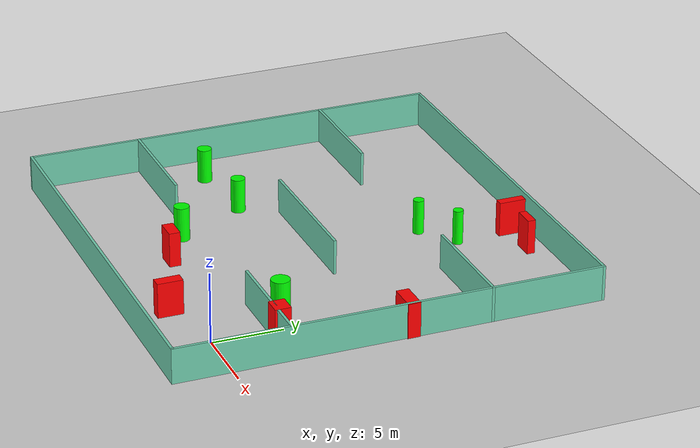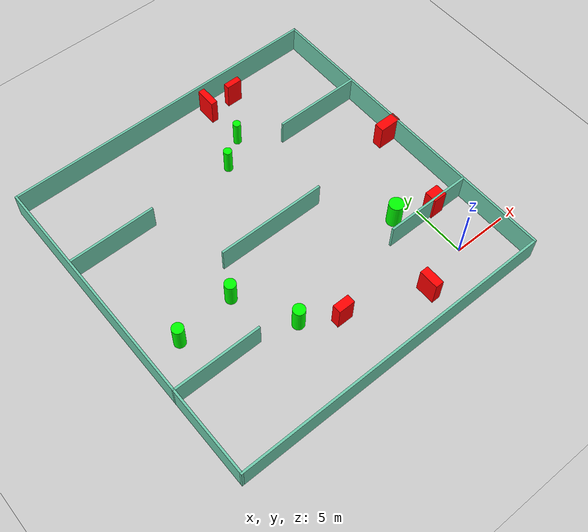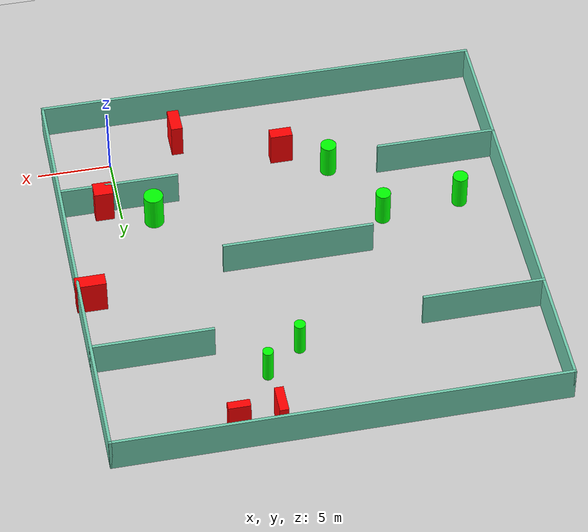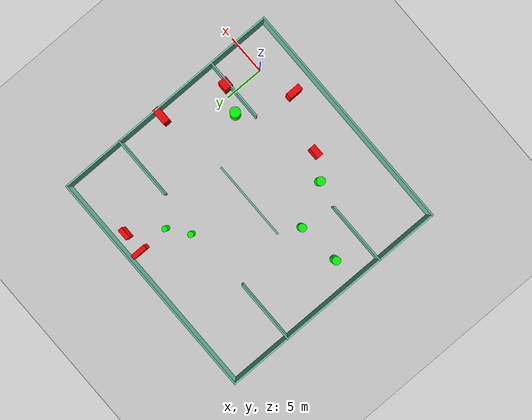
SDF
<sdf version="1.7">
 <world name="default">
  <light name="sun" type="directional">
   <pose>0 0 10 0 -0 0</pose>
   <diffuse>0.8 0.8 0.8 1</diffuse>
   <specular>0.2 0.2 0.2 1</specular>
   <attenuation>
    <range>1000</range>
    <constant>0.9</constant>
    <linear>0.01</linear>
    <quadratic>0.001</quadratic>
   </attenuation>
   <direction>-0.5 0.1 -0.9</direction>
   <spot><inner_angle>0</inner_angle><outer_angle>0</outer_angle><falloff>0</falloff></spot>
  </light>
  <model name="ground_plane">
   <static>1</static>
   <link name="link">
    <collision name="collision">
     <geometry><plane><normal>0 0 1</normal><size>100 100</size></plane></geometry>
     <surface>
      <contact><collide_bitmask>65535</collide_bitmask></contact>
      <friction><ode><mu>100</mu><mu2>50</mu2></ode></friction>
     </surface>
    </collision>
    <visual name="visual">
     <cast_shadows>0</cast_shadows>
     <geometry><plane><normal>0 0 1</normal><size>100 100</size></plane></geometry>
     <material>
      <script><uri>file://media/materials/scripts/gazebo.material</uri><name>Gazebo/Grey</name></script>
     </material>
    </visual>
   </link>
  </model>
  <gravity>0 0 -9.8</gravity>
  <magnetic_field>6e-06 2.3e-05 -4.2e-05</magnetic_field>
  <atmosphere type="adiabatic"/>
  <physics type="ode">
   <max_step_size>0.001</max_step_size>
   <real_time_factor>1</real_time_factor>
   <real_time_update_rate>1000</real_time_update_rate>
  </physics>
  <scene><ambient>0.4 0.4 0.4 1</ambient><background>0.7 0.7 0.7 1</background><shadows>1</shadows></scene>
  <spherical_coordinates>
   <surface_model>EARTH_WGS84</surface_model>
   <latitude_deg>0</latitude_deg>
   <longitude_deg>0</longitude_deg>
   <elevation>0</elevation>
   <heading_deg>0</heading_deg>
  </spherical_coordinates>
  <model name="my_base_walls">
   <link name="Wall_10">
    <collision name="Wall_10_Collision">
     <geometry><box><size>8.2 0.2 2.5</size></box></geometry>
     <pose>0 0 1.25 0 -0 0</pose>
    </collision>
    <visual name="Wall_10_Visual">
     <pose>0 0 1.25 0 -0 0</pose>
     <geometry><box><size>8.2 0.2 2.5</size></box></geometry>
     <material>
      <script><uri>file://media/materials/scripts/gazebo.material</uri><name>Gazebo/Grey</name></script>
      <ambient>0.435294 0.796078 0.67451 1</ambient>
     </material>
     <meta><layer>0</layer></meta>
    </visual>
    <pose>-11 -7 0 0 -0 0</pose>
   </link>
   <link name="Wall_12">
    <collision name="Wall_12_Collision">
     <geometry><box><size>8.2 0.2 2.5</size></box></geometry>
     <pose>0 0 1.25 0 -0 0</pose>
    </collision>
    <visual name="Wall_12_Visual">
     <pose>0 0 1.25 0 -0 0</pose>
     <geometry><box><size>8.2 0.2 2.5</size></box></geometry>
     <material>
      <script><uri>file://media/materials/scripts/gazebo.material</uri><name>Gazebo/Grey</name></script>
      <ambient>0.435294 0.796078 0.67451 1</ambient>
     </material>
     <meta><layer>0</layer></meta>
    </visual>
    <pose>-11 7 0 0 -0 0</pose>
   </link>
   <link name="Wall_14">
    <collision name="Wall_14_Collision">
     <geometry><box><size>8.2 0.2 2.5</size></box></geometry>
     <pose>0 0 1.25 0 -0 0</pose>
    </collision>
    <visual name="Wall_14_Visual">
     <pose>0 0 1.25 0 -0 0</pose>
     <geometry><box><size>8.2 0.2 2.5</size></box></geometry>
     <material>
      <script><uri>file://media/materials/scripts/gazebo.material</uri><name>Gazebo/Grey</name></script>
      <ambient>0.435294 0.796078 0.67451 1</ambient>
     </material>
     <meta><layer>0</layer></meta>
    </visual>
    <pose>11 7 0 0 -0 3.14159</pose>
   </link>
   <link name="Wall_16">
    <collision name="Wall_16_Collision">
     <geometry><box><size>10.2 0.2 2.5</size></box></geometry>
     <pose>0 0 1.25 0 -0 0</pose>
    </collision>
    <visual name="Wall_16_Visual">
     <pose>0 0 1.25 0 -0 0</pose>
     <geometry><box><size>10.2 0.2 2.5</size></box></geometry>
     <material>
      <script><uri>file://media/materials/scripts/gazebo.material</uri><name>Gazebo/Grey</name></script>
      <ambient>0.435294 0.796078 0.67451 1</ambient>
     </material>
     <meta><layer>0</layer></meta>
    </visual>
    <pose>0 0 0 0 -0 3.14159</pose>
   </link>
   <link name="Wall_2">
    <collision name="Wall_2_Collision">
     <geometry><box><size>30.2 0.2 2.5</size></box></geometry>
     <pose>0 0 1.25 0 -0 0</pose>
    </collision>
    <visual name="Wall_2_Visual">
     <pose>0 0 1.25 0 -0 0</pose>
     <geometry><box><size>30.2 0.2 2.5</size></box></geometry>
     <material>
      <script><uri>file://media/materials/scripts/gazebo.material</uri><name>Gazebo/Grey</name></script>
      <ambient>0.435294 0.796078 0.67451 1</ambient>
     </material>
     <meta><layer>0</layer></meta>
    </visual>
    <pose>0 -15 0 0 -0 3.14159</pose>
   </link>
   <link name="Wall_3">
    <collision name="Wall_3_Collision">
     <geometry><box><size>30.2 0.2 2.5</size></box></geometry>
     <pose>0 0 1.25 0 -0 0</pose>
    </collision>
    <visual name="Wall_3_Visual">
     <pose>0 0 1.25 0 -0 0</pose>
     <geometry><box><size>30.2 0.2 2.5</size></box></geometry>
     <material>
      <script><uri>file://media/materials/scripts/gazebo.material</uri><name>Gazebo/Grey</name></script>
      <ambient>0.435294 0.796078 0.67451 1</ambient>
     </material>
     <meta><layer>0</layer></meta>
    </visual>
    <pose>-15 0 0 0 -0 1.5708</pose>
   </link>
   <link name="Wall_4">
    <collision name="Wall_4_Collision">
     <geometry><box><size>30.2 0.2 2.5</size></box></geometry>
     <pose>0 0 1.25 0 -0 0</pose>
    </collision>
    <visual name="Wall_4_Visual">
     <pose>0 0 1.25 0 -0 0</pose>
     <geometry><box><size>30.2 0.2 2.5</size></box></geometry>
     <material>
      <script><uri>file://media/materials/scripts/gazebo.material</uri><name>Gazebo/Grey</name></script>
      <ambient>0.435294 0.796078 0.67451 1</ambient>
     </material>
     <meta><layer>0</layer></meta>
    </visual>
    <pose>0 15 0 0 -0 0</pose>
   </link>
   <link name="Wall_6">
    <collision name="Wall_6_Collision">
     <geometry><box><size>30.2 0.2 2.5</size></box></geometry>
     <pose>0 0 1.25 0 -0 0</pose>
    </collision>
    <visual name="Wall_6_Visual">
     <pose>0 0 1.25 0 -0 0</pose>
     <geometry><box><size>30.2 0.2 2.5</size></box></geometry>
     <material>
      <script><uri>file://media/materials/scripts/gazebo.material</uri><name>Gazebo/Grey</name></script>
      <ambient>0.435294 0.796078 0.67451 1</ambient>
     </material>
     <meta><layer>0</layer></meta>
    </visual>
    <pose>15 0 0 0 -0 1.5708</pose>
   </link>
   <link name="Wall_8">
    <collision name="Wall_8_Collision">
     <geometry><box><size>8.2 0.2 2.5</size></box></geometry>
     <pose>0 0 1.25 0 -0 0</pose>
    </collision>
    <visual name="Wall_8_Visual">
     <pose>0 0 1.25 0 -0 0</pose>
     <geometry><box><size>8.2 0.2 2.5</size></box></geometry>
     <material>
      <script><uri>file://media/materials/scripts/gazebo.material</uri><name>Gazebo/Grey</name></script>
      <ambient>0.435294 0.796078 0.67451 1</ambient>
     </material>
     <meta><layer>0</layer></meta>
    </visual>
    <pose>11 -7 0 0 -0 3.14159</pose>
   </link>
   <static>1</static>
   <pose>-11 11 0 0 -0 0</pose>
  </model>
  <model name="cylinder1">
   <static>1</static>
   <link name="link">
    <inertial>
     <mass>1</mass>
     <inertia><ixx>0.5</ixx><ixy>0</ixy><ixz>0</ixz><iyy>0.5</iyy><iyz>0</iyz><izz>1</izz></inertia>
    </inertial>
    <collision name="collision">
     <geometry><cylinder><radius>0.5403983976918717</radius><length>2.5</length></cylinder></geometry>
    </collision>
    <visual name="visual">
     <geometry><cylinder><radius>0.5403983976918717</radius><length>2.5</length></cylinder></geometry>
     <material>
      <ambient>0 1 0 1</ambient>
      <diffuse>0 1 0 1</diffuse>
      <specular>0.1 0.1 0.1 1</specular>
      <emissive>0 0 0 0</emissive>
     </material>
    </visual>
   </link>
   <pose>-14.654008447266559 3.2368826334967045 1.25 0 0 0</pose>
  </model>
  <model name="cylinder2">
   <static>1</static>
   <link name="link">
    <inertial>
     <mass>1</mass>
     <inertia><ixx>0.5</ixx><ixy>0</ixy><ixz>0</ixz><iyy>0.5</iyy><iyz>0</iyz><izz>1</izz></inertia>
    </inertial>
    <collision name="collision">
     <geometry><cylinder><radius>0.6595521637259085</radius><length>2.5</length></cylinder></geometry>
    </collision>
    <visual name="visual">
     <geometry><cylinder><radius>0.6595521637259085</radius><length>2.5</length></cylinder></geometry>
     <material>
      <ambient>0 1 0 1</ambient>
      <diffuse>0 1 0 1</diffuse>
      <specular>0.1 0.1 0.1 1</specular>
      <emissive>0 0 0 0</emissive>
     </material>
    </visual>
   </link>
   <pose>-2.1440723789663068 5.623248183303897 1.25 0 0 0</pose>
  </model>
  <model name="cylinder3">
   <static>1</static>
   <link name="link">
    <inertial>
     <mass>1</mass>
     <inertia><ixx>0.5</ixx><ixy>0</ixy><ixz>0</ixz><iyy>0.5</iyy><iyz>0</iyz><izz>1</izz></inertia>
    </inertial>
    <collision name="collision">
     <geometry><cylinder><radius>0.5077328084613428</radius><length>2.5</length></cylinder></geometry>
    </collision>
    <visual name="visual">
     <geometry><cylinder><radius>0.5077328084613428</radius><length>2.5</length></cylinder></geometry>
     <material>
      <ambient>0 1 0 1</ambient>
      <diffuse>0 1 0 1</diffuse>
      <specular>0.1 0.1 0.1 1</specular>
      <emissive>0 0 0 0</emissive>
     </material>
    </visual>
   </link>
   <pose>-17.368959558894026 8.365470899169729 1.25 0 0 0</pose>
  </model>
  <model name="cylinder4">
   <static>1</static>
   <link name="link">
    <inertial>
     <mass>1</mass>
     <inertia><ixx>0.5</ixx><ixy>0</ixy><ixz>0</ixz><iyy>0.5</iyy><iyz>0</iyz><izz>1</izz></inertia>
    </inertial>
    <collision name="collision">
     <geometry><cylinder><radius>0.35605940340848424</radius><length>2.5</length></cylinder></geometry>
    </collision>
    <visual name="visual">
     <geometry><cylinder><radius>0.35605940340848424</radius><length>2.5</length></cylinder></geometry>
     <material>
      <ambient>0 1 0 1</ambient>
      <diffuse>0 1 0 1</diffuse>
      <specular>0.1 0.1 0.1 1</specular>
      <emissive>0 0 0 0</emissive>
     </material>
    </visual>
   </link>
   <pose>-7.104519971303269 20.575555064753942 1.25 0 0 0</pose>
  </model>
  <model name="cylinder5">
   <static>1</static>
   <link name="link">
    <inertial>
     <mass>1</mass>
     <inertia><ixx>0.5</ixx><ixy>0</ixy><ixz>0</ixz><iyy>0.5</iyy><iyz>0</iyz><izz>1</izz></inertia>
    </inertial>
    <collision name="collision">
     <geometry><cylinder><radius>0.38140060611900606</radius><length>2.5</length></cylinder></geometry>
    </collision>
    <visual name="visual">
     <geometry><cylinder><radius>0.38140060611900606</radius><length>2.5</length></cylinder></geometry>
     <material>
      <ambient>0 1 0 1</ambient>
      <diffuse>0 1 0 1</diffuse>
      <specular>0.1 0.1 0.1 1</specular>
      <emissive>0 0 0 0</emissive>
     </material>
    </visual>
   </link>
   <pose>-9.561120844196088 18.713201586078696 1.25 0 0 0</pose>
  </model>
  <model name="cylinder6">
   <static>1</static>
   <link name="link">
    <inertial>
     <mass>1</mass>
     <inertia><ixx>0.5</ixx><ixy>0</ixy><ixz>0</ixz><iyy>0.5</iyy><iyz>0</iyz><izz>1</izz></inertia>
    </inertial>
    <collision name="collision">
     <geometry><cylinder><radius>0.5127342652126781</radius><length>2.5</length></cylinder></geometry>
    </collision>
    <visual name="visual">
     <geometry><cylinder><radius>0.5127342652126781</radius><length>2.5</length></cylinder></geometry>
     <material>
      <ambient>0 1 0 1</ambient>
      <diffuse>0 1 0 1</diffuse>
      <specular>0.1 0.1 0.1 1</specular>
      <emissive>0 0 0 0</emissive>
     </material>
    </visual>
   </link>
   <pose>-22.81788732854048 7.85208478434855 1.25 0 0 0</pose>
  </model>
  <model name="box1">
   <static>1</static>
   <link name="link">
    <inertial>
     <mass>1</mass>
     <inertia><ixx>0.083</ixx><ixy>0</ixy><ixz>0</ixz><iyy>0.083</iyy><iyz>0</iyz><izz>0.083</izz></inertia>
    </inertial>
    <collision name="collision">
     <geometry><box><size>1.2836315530431075 1.1270839447029446 2.5</size></box></geometry>
    </collision>
    <visual name="visual">
     <geometry><box><size>1.2836315530431075 1.1270839447029446 2.5</size></box></geometry>
     <material>
      <ambient>1 0 0 1</ambient>
      <diffuse>1 0 0 1</diffuse>
      <specular>0.1 0.1 0.1 1</specular>
      <emissive>0 0 0 0</emissive>
     </material>
    </visual>
    <sensor name="my_contact" type="contact">
     <contact><collision>box_collision</collision><topic>__default_topic__</topic></contact>
    </sensor>
   </link>
   <pose>1.0995559533292365 4.316894212718761 1.25 0 0 0</pose>
  </model>
  <model name="box2">
   <static>1</static>
   <link name="link">
    <inertial>
     <mass>1</mass>
     <inertia><ixx>0.083</ixx><ixy>0</ixy><ixz>0</ixz><iyy>0.083</iyy><iyz>0</iyz><izz>0.083</izz></inertia>
    </inertial>
    <collision name="collision">
     <geometry><box><size>1.474192197381473 0.5566303041627746 2.5</size></box></geometry>
    </collision>
    <visual name="visual">
     <geometry><box><size>1.474192197381473 0.5566303041627746 2.5</size></box></geometry>
     <material>
      <ambient>1 0 0 1</ambient>
      <diffuse>1 0 0 1</diffuse>
      <specular>0.1 0.1 0.1 1</specular>
      <emissive>0 0 0 0</emissive>
     </material>
    </visual>
    <sensor name="my_contact" type="contact">
     <contact><collision>box_collision</collision><topic>__default_topic__</topic></contact>
    </sensor>
   </link>
   <pose>-4.482730547957747 24.52237148947631 1.25 0 0 0</pose>
  </model>
  <model name="box3">
   <static>1</static>
   <link name="link">
    <inertial>
     <mass>1</mass>
     <inertia><ixx>0.083</ixx><ixy>0</ixy><ixz>0</ixz><iyy>0.083</iyy><iyz>0</iyz><izz>0.083</izz></inertia>
    </inertial>
    <collision name="collision">
     <geometry><box><size>2.0294553009982383 0.8937449736375469 2.5</size></box></geometry>
    </collision>
    <visual name="visual">
     <geometry><box><size>2.0294553009982383 0.8937449736375469 2.5</size></box></geometry>
     <material>
      <ambient>1 0 0 1</ambient>
      <diffuse>1 0 0 1</diffuse>
      <specular>0.1 0.1 0.1 1</specular>
      <emissive>0 0 0 0</emissive>
     </material>
    </visual>
    <sensor name="my_contact" type="contact">
     <contact><collision>box_collision</collision><topic>__default_topic__</topic></contact>
    </sensor>
   </link>
   <pose>3.1711252186155363 12.387306297558208 1.25 0 0 0</pose>
  </model>
  <model name="box4">
   <static>1</static>
   <link name="link">
    <inertial>
     <mass>1</mass>
     <inertia><ixx>0.083</ixx><ixy>0</ixy><ixz>0</ixz><iyy>0.083</iyy><iyz>0</iyz><izz>0.083</izz></inertia>
    </inertial>
    <collision name="collision">
     <geometry><box><size>0.6044944360539712 1.9151629855683756 2.5</size></box></geometry>
    </collision>
    <visual name="visual">
     <geometry><box><size>0.6044944360539712 1.9151629855683756 2.5</size></box></geometry>
     <material>
      <ambient>1 0 0 1</ambient>
      <diffuse>1 0 0 1</diffuse>
      <specular>0.1 0.1 0.1 1</specular>
      <emissive>0 0 0 0</emissive>
     </material>
    </visual>
    <sensor name="my_contact" type="contact">
     <contact><collision>box_collision</collision><topic>__default_topic__</topic></contact>
    </sensor>
   </link>
   <pose>-7.209223561297211 24.596976146362 1.25 0 0 0</pose>
  </model>
  <model name="box5">
   <static>1</static>
   <link name="link">
    <inertial>
     <mass>1</mass>
     <inertia><ixx>0.083</ixx><ixy>0</ixy><ixz>0</ixz><iyy>0.083</iyy><iyz>0</iyz><izz>0.083</izz></inertia>
    </inertial>
    <collision name="collision">
     <geometry><box><size>1.5184946578846614 0.7959948721338179 2.5</size></box></geometry>
    </collision>
    <visual name="visual">
     <geometry><box><size>1.5184946578846614 0.7959948721338179 2.5</size></box></geometry>
     <material>
      <ambient>1 0 0 1</ambient>
      <diffuse>1 0 0 1</diffuse>
      <specular>0.1 0.1 0.1 1</specular>
      <emissive>0 0 0 0</emissive>
     </material>
    </visual>
    <sensor name="my_contact" type="contact">
     <contact><collision>box_collision</collision><topic>__default_topic__</topic></contact>
    </sensor>
   </link>
   <pose>-11.67749917543959 1.4310893167836598 1.25 0 0 0</pose>
  </model>
  <model name="box6">
   <static>1</static>
   <link name="link">
    <inertial>
     <mass>1</mass>
     <inertia><ixx>0.083</ixx><ixy>0</ixy><ixz>0</ixz><iyy>0.083</iyy><iyz>0</iyz><izz>0.083</izz></inertia>
    </inertial>
    <collision name="collision">
     <geometry><box><size>0.7894058652894766 1.800169647673998 2.5</size></box></geometry>
    </collision>
    <visual name="visual">
     <geometry><box><size>0.7894058652894766 1.800169647673998 2.5</size></box></geometry>
     <material>
      <ambient>1 0 0 1</ambient>
      <diffuse>1 0 0 1</diffuse>
      <specular>0.1 0.1 0.1 1</specular>
      <emissive>0 0 0 0</emissive>
     </material>
    </visual>
    <sensor name="my_contact" type="contact">
     <contact><collision>box_collision</collision><topic>__default_topic__</topic></contact>
    </sensor>
   </link>
   <pose>-4.7641432587667865 -1.1757947757855516 1.25 0 0 0</pose>
  </model>
 </world>
</sdf>
